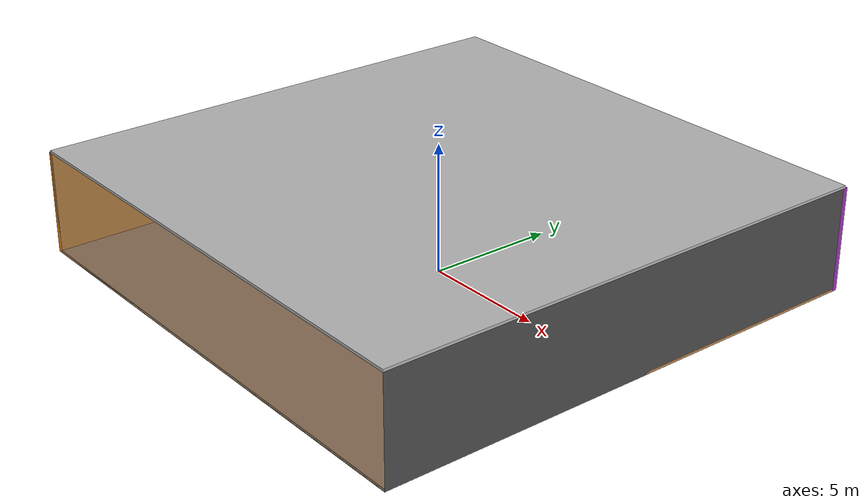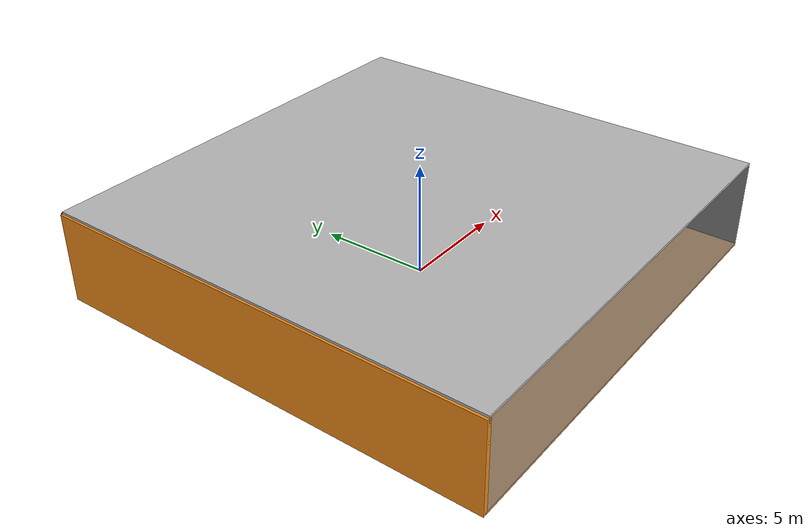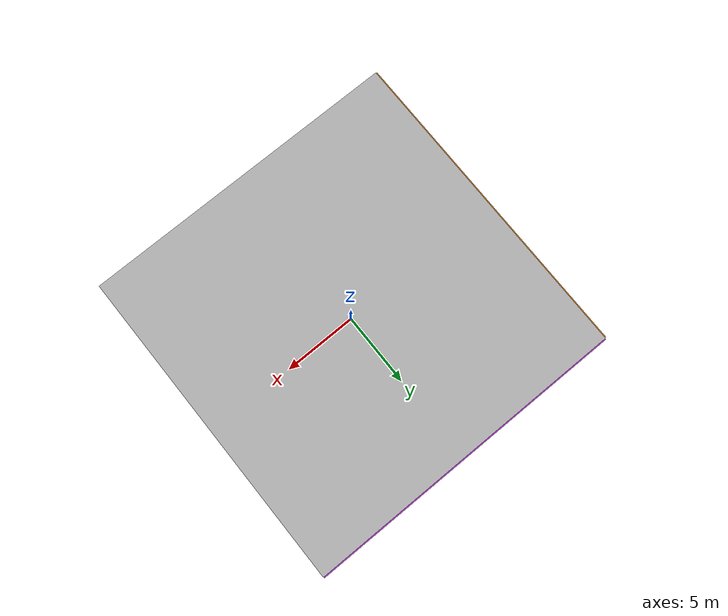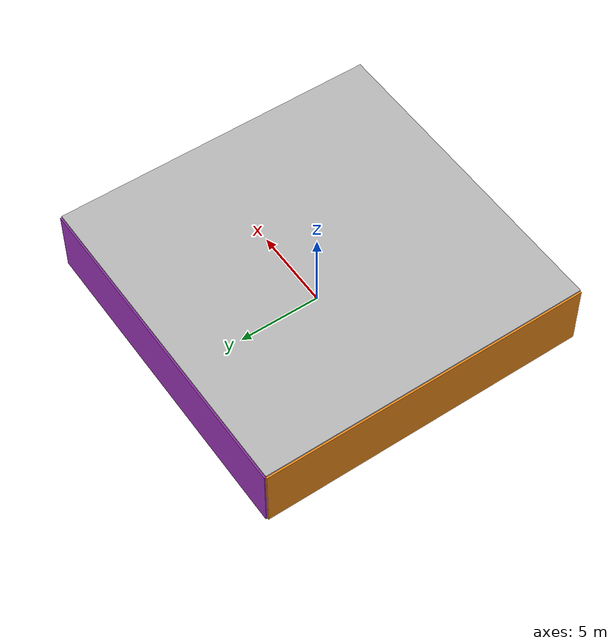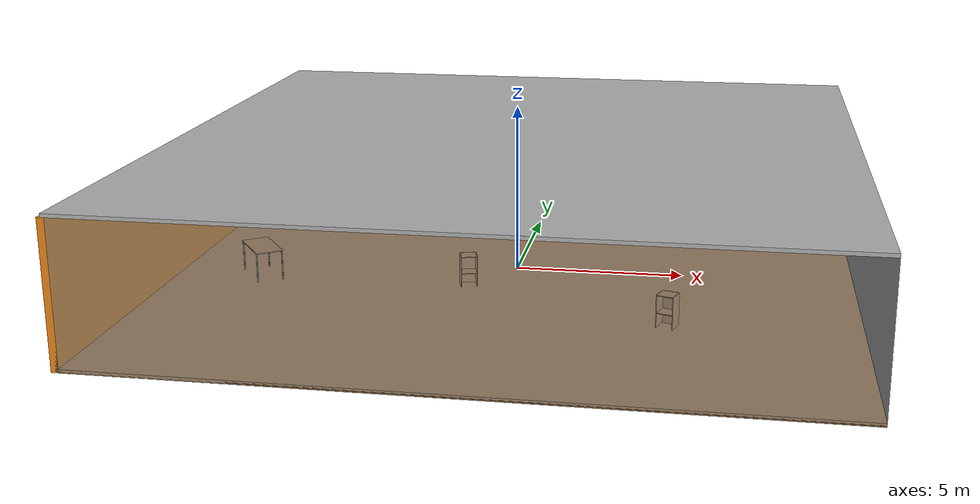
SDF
<sdf version="1.4">
 <world name="default">
  <physics type="ode">
   <max_step_size>0.001</max_step_size>
   <real_time_factor>1</real_time_factor>
   <real_time_update_rate>1000</real_time_update_rate>
   <gravity>0 0 -9.8</gravity>
  </physics>
  <scene><ambient>0.4 0.4 0.4 1</ambient><background>0.7 0.7 0.7 1</background><shadows>1</shadows></scene>
  <model name="Surrounding">
   <static>1</static>
   <link name="Ceiling">
    <collision name="Ceiling_Collision"><geometry><box><size>20 20 0.1</size></box></geometry></collision>
    <visual name="Ceiling_Visual">
     <geometry><box><size>20 20 0.1</size></box></geometry>
     <material>
      <script><uri>file://media/materials/scripts/gazebo.material</uri><name>Gazebo/Pioneer2Body</name></script>
     </material>
    </visual>
    <pose>0 0 4.05 0 0 0</pose>
   </link>
   <link name="Wall_South">
    <collision name="Wall_South_Collision">
     <geometry><box><size>20 0 4</size></box></geometry>
     <pose>0 0 2 0 -0 0</pose>
    </collision>
    <visual name="Wall_South_Visual">
     <pose>0 0 2 0 -0 0</pose>
     <geometry><box><size>20 0 4</size></box></geometry>
     <material>
      <script><uri>file://media/materials/scripts/gazebo.material</uri><name>Gazebo/GreyTransparent</name></script>
     </material>
    </visual>
    <velocity_decay><linear>0</linear><angular>0</angular></velocity_decay>
    <pose>0 -10 0 0 -0 0</pose>
   </link>
   <link name="Wall_East">
    <collision name="Wall_21_Collision">
     <geometry><box><size>20 0 4</size></box></geometry>
     <pose>0 0 2 0 -0 0</pose>
    </collision>
    <visual name="Wall_21_Visual">
     <pose>0 0 2 0 -0 0</pose>
     <geometry><box><size>20 0 4</size></box></geometry>
     <material>
      <script><uri>file://media/materials/scripts/gazebo.material</uri><name>Gazebo/DarkGrey</name></script>
     </material>
    </visual>
    <velocity_decay><linear>0</linear><angular>0</angular></velocity_decay>
    <pose>10 0 0 0 -0 1.5708</pose>
   </link>
   <link name="Wall_North">
    <collision name="Wall_22_Collision">
     <geometry><box><size>20 0.2 4</size></box></geometry>
     <pose>0 0 2 0 -0 0</pose>
    </collision>
    <visual name="Wall_22_Visual">
     <pose>0 0 2 0 -0 0</pose>
     <geometry><box><size>20 0.2 4</size></box></geometry>
     <material>
      <script><uri>file://media/materials/scripts/gazebo.material</uri><name>Gazebo/Purple</name></script>
     </material>
    </visual>
    <velocity_decay><linear>0</linear><angular>0</angular></velocity_decay>
    <pose>0 10 0 0 -0 0</pose>
   </link>
   <link name="Wall_West">
    <collision name="Wall_23_Collision">
     <geometry><box><size>20 0.2 4</size></box></geometry>
     <pose>0 0 2 0 -0 0</pose>
    </collision>
    <visual name="Wall_23_Visual">
     <pose>0 0 2 0 -0 0</pose>
     <geometry><box><size>20 0.2 4</size></box></geometry>
     <material>
      <script><uri>file://media/materials/scripts/gazebo.material</uri><name>Gazebo/Orange</name></script>
     </material>
    </visual>
    <velocity_decay><linear>0</linear><angular>0</angular></velocity_decay>
    <pose>-10 0 0 0 0 -1.5708</pose>
   </link>
   <link name="Ground_link">
    <collision name="collision">
     <pose>0 0 .05 0 -0 0</pose>
     <geometry><box><size>20 20 0.1</size></box></geometry>
    </collision>
    <visual name="visual">
     <pose>0 0 .05 0 -0 0</pose>
     <geometry><box><size>20 20 0.1</size></box></geometry>
     <material>
      <script><uri>file://media/materials/scripts/gazebo.material</uri><name>Gazebo/Wood</name></script>
     </material>
    </visual>
   </link>
   <static>1</static>
  </model>
  <spherical_coordinates>
   <surface_model>EARTH_WGS84</surface_model>
   <latitude_deg>0</latitude_deg>
   <longitude_deg>0</longitude_deg>
   <elevation>0</elevation>
   <heading_deg>0</heading_deg>
  </spherical_coordinates>
  <light name="lightball_0" type="diffuse">
   <diffuse>0.8 0.8 0.8 1</diffuse>
   <specular>0.2 0.2 0.2 1</specular>
   <attenuation>
    <range>100</range>
    <constant>0.7</constant>
    <linear>0.01</linear>
    <quadratic>0.001</quadratic>
   </attenuation>
   <direction>-0.5 0.1 -0.9</direction>
   <pose>4.17814240871 -9.77079771499 2.32330322975 0 0 0</pose>
  </light>
  <light name="lightball_1" type="diffuse">
   <diffuse>0.8 0.8 0.8 1</diffuse>
   <specular>0.2 0.2 0.2 1</specular>
   <attenuation>
    <range>100</range>
    <constant>0.7</constant>
    <linear>0.01</linear>
    <quadratic>0.001</quadratic>
   </attenuation>
   <direction>-0.5 0.1 -0.9</direction>
   <pose>3.10912003635 8.71816250619 3.29169407866 0 0 0</pose>
  </light>
  <light name="lightball_2" type="diffuse">
   <diffuse>0.8 0.8 0.8 1</diffuse>
   <specular>0.2 0.2 0.2 1</specular>
   <attenuation>
    <range>100</range>
    <constant>0.7</constant>
    <linear>0.01</linear>
    <quadratic>0.001</quadratic>
   </attenuation>
   <direction>-0.5 0.1 -0.9</direction>
   <pose>-1.54701606974 -7.62882666107 1.59252387813 0 0 0</pose>
  </light>
  <light name="lightball_3" type="diffuse">
   <diffuse>0.8 0.8 0.8 1</diffuse>
   <specular>0.2 0.2 0.2 1</specular>
   <attenuation>
    <range>100</range>
    <constant>0.7</constant>
    <linear>0.01</linear>
    <quadratic>0.001</quadratic>
   </attenuation>
   <direction>-0.5 0.1 -0.9</direction>
   <pose>7.63303559609 -6.80282486719 3.76226801062 0 0 0</pose>
  </light>
  <include><uri>model://table</uri><pose>-7.36224014646 -2.12864838541 0 0 0 2.19998525949</pose></include>
  <include><uri>model://cabinet</uri><pose>-3.4530711605 7.67230266688 0 0 0 0.282696874519</pose></include>
  <include><uri>model://cabinet</uri><pose>-1.12052859661 -2.08801297796 0 0 0 1.86276412677</pose></include>
  <include><uri>model://cabinet</uri><pose>4.78656134674 -4.62775998518 0 0 0 1.2326373951</pose></include>
  <include>
   <uri>model://construction_cone</uri>
   <pose>8.59850509578 8.33027568544 0 0 0 0.951518960777</pose>
  </include>
 </world>
</sdf>

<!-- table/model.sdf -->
<sdf version="1.5">
  <model name="table">
    <static>true</static>
    <link name="link">
      <collision name="surface">
        <pose>0 0 1.0 0 0 0</pose>
        <geometry>
          <box>
            <size>1.5 0.8 0.03</size>
          </box>
        </geometry>
        <surface>
          <friction>
            <ode>
              <mu>0.6</mu>
              <mu2>0.6</mu2>
            </ode>
          </friction>
        </surface>
      </collision>
      <visual name="visual1">
        <pose>0 0 1.0 0 0 0</pose>
        <geometry>
          <box>
            <size>1.5 0.8 0.03</size>
          </box>
        </geometry>
        <material>
          <script>
            <uri>model://media/materials/scripts/gazebo.material</uri>
            <name>Gazebo/Wood</name>
          </script>
        </material>
      </visual>
      <collision name="front_left_leg">
        <pose>0.68 0.38 0.5 0 0 0</pose>
        <geometry>
          <cylinder>
            <radius>0.02</radius>
            <length>1.0</length>
          </cylinder>
        </geometry>
      </collision>
      <visual name="front_left_leg">
        <pose>0.68 0.38 0.5 0 0 0</pose>
        <geometry>
          <cylinder>
            <radius>0.02</radius>
            <length>1.0</length>
          </cylinder>
        </geometry>
        <material>
          <script>
            <uri>model://media/materials/scripts/gazebo.material</uri>
            <name>Gazebo/Grey</name>
          </script>
        </material>
      </visual>
      <collision name="front_right_leg">
        <pose>0.68 -0.38 0.5 0 0 0</pose>
        <geometry>
          <cylinder>
            <radius>0.02</radius>
            <length>1.0</length>
          </cylinder>
        </geometry>
      </collision>
      <visual name="front_right_leg">
        <pose>0.68 -0.38 0.5 0 0 0</pose>
        <geometry>
          <cylinder>
            <radius>0.02</radius>
            <length>1.0</length>
          </cylinder>
        </geometry>
        <material>
          <script>
            <uri>model://media/materials/scripts/gazebo.material</uri>
            <name>Gazebo/Grey</name>
          </script>
        </material>
      </visual>
      <collision name="back_right_leg">
        <pose>-0.68 -0.38 0.5 0 0 0</pose>
        <geometry>
          <cylinder>
            <radius>0.02</radius>
            <length>1.0</length>
          </cylinder>
        </geometry>
      </collision>
      <visual name="back_right_leg">
        <pose>-0.68 -0.38 0.5 0 0 0</pose>
        <geometry>
          <cylinder>
            <radius>0.02</radius>
            <length>1.0</length>
          </cylinder>
        </geometry>
        <material>
          <script>
            <uri>model://media/materials/scripts/gazebo.material</uri>
            <name>Gazebo/Grey</name>
          </script>
        </material>
      </visual>
      <collision name="back_left_leg">
        <pose>-0.68 0.38 0.5 0 0 0</pose>
        <geometry>
          <cylinder>
            <radius>0.02</radius>
            <length>1.0</length>
          </cylinder>
        </geometry>
      </collision>
      <visual name="back_left_leg">
        <pose>-0.68 0.38 0.5 0 0 0</pose>
        <geometry>
          <cylinder>
            <radius>0.02</radius>
            <length>1.0</length>
          </cylinder>
        </geometry>
        <material>
          <script>
            <uri>model://media/materials/scripts/gazebo.material</uri>
            <name>Gazebo/Grey</name>
          </script>
        </material>
      </visual>
    </link>
  </model>
</sdf>

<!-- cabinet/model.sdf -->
<sdf version="1.5">
  <model name="cabinet">
    <static>true</static>
    <link name="cabinet_bottom_plate">
      <inertial>
        <pose>0 0 -1 0 0 0</pose>
        <inertia>
          <ixx>2.050000</ixx>
          <ixy>0</ixy>
          <ixz>0</ixz>
          <iyy>2.050000</iyy>
          <iyz>0</iyz>
          <izz>2.050000</izz>
        </inertia>
        <mass>25.000000</mass>
      </inertial>
      <collision name="cabinet_bottom_plate_geom">
        <pose>0 0 0.010000 0 0 0</pose>
        <geometry>
          <box>
            <size>0.450000 0.450000 0.020000</size>
          </box>
        </geometry>
      </collision>
      <visual name="cabinet_bottom_plate_geom_visual">
        <pose>0 0 0.010000 0 0 0</pose>
        <geometry>
          <box>
            <size>0.450000 0.450000 0.020000</size>
          </box>
        </geometry>
        <material>
          <script>
            <uri>model://media/materials/scripts/gazebo.material</uri>
            <name>Gazebo/Wood</name>
          </script>
        </material>
      </visual>
      <collision name="cabinet_bottom_plate_geom_cabinet_back_plate">
        <pose>0.235000 0 0.510000 0 0 0</pose>
        <geometry>
          <box>
            <size>0.020000 0.450000 1.020000</size>
          </box>
        </geometry>
      </collision>
      <visual name="cabinet_bottom_plate_geom_cabinet_back_plate_visual">
        <pose>0.235000 0 0.510000 0 0 0</pose>
        <geometry>
          <box>
            <size>0.020000 0.450000 1.020000</size>
          </box>
        </geometry>
        <material>
          <script>
            <uri>model://media/materials/scripts/gazebo.material</uri>
            <name>Gazebo/Wood</name>
          </script>
        </material>
      </visual>
      <collision name="cabinet_bottom_plate_geom_cabinet_left_plate">
        <pose>0 0.235000 0.510000 0 0 0</pose>
        <geometry>
          <box>
            <size>0.450000 0.020000 1.020000</size>
          </box>
        </geometry>
      </collision>
      <visual name="cabinet_bottom_plate_geom_cabinet_left_plate_visual">
        <pose>0 0.235000 0.510000 0 0 0</pose>
        <geometry>
          <box>
            <size>0.450000 0.020000 1.020000</size>
          </box>
        </geometry>
        <material>
          <script>
            <uri>model://media/materials/scripts/gazebo.material</uri>
            <name>Gazebo/Wood</name>
          </script>
        </material>
      </visual>
      <collision name="cabinet_bottom_plate_geom_cabinet_middle_plate">
        <pose>0 0 0.510000 0 0 0</pose>
        <geometry>
          <box>
            <size>0.450000 0.450000 0.020000</size>
          </box>
        </geometry>
      </collision>
      <visual name="cabinet_bottom_plate_geom_cabinet_middle_plate_visual">
        <pose>0 0 0.510000 0 0 0</pose>
        <geometry>
          <box>
            <size>0.450000 0.450000 0.020000</size>
          </box>
        </geometry>
        <material>
          <script>
            <uri>model://media/materials/scripts/gazebo.material</uri>
            <name>Gazebo/Wood</name>
          </script>
        </material>
      </visual>
      <collision name="cabinet_bottom_plate_geom_cabinet_right_plate">
        <pose>0 -0.235000 0.510000 0 0 0</pose>
        <geometry>
          <box>
            <size>0.450000 0.020000 1.020000</size>
          </box>
        </geometry>
      </collision>
      <visual name="cabinet_bottom_plate_geom_cabinet_right_plate_visual">
        <pose>0 -0.235000 0.510000 0 0 0</pose>
        <geometry>
          <box>
            <size>0.450000 0.020000 1.020000</size>
          </box>
        </geometry>
        <material>
          <script>
            <uri>model://media/materials/scripts/gazebo.material</uri>
            <name>Gazebo/Wood</name>
          </script>
        </material>
      </visual>
      <collision name="cabinet_bottom_plate_geom_cabinet_top_plate">
        <pose>0 0 1.010000 0 0 0</pose>
        <geometry>
          <box>
            <size>0.450000 0.450000 0.020000</size>
          </box>
        </geometry>
      </collision>
      <visual name="cabinet_bottom_plate_geom_cabinet_top_plate_visual">
        <pose>0 0 1.010000 0 0 0</pose>
        <geometry>
          <box>
            <size>0.450000 0.450000 0.020000</size>
          </box>
        </geometry>
        <material>
          <script>
            <uri>model://media/materials/scripts/gazebo.material</uri>
            <name>Gazebo/Wood</name>
          </script>
        </material>
      </visual>
    </link>
  </model>
</sdf>

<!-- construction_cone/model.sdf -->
<sdf version="1.5">
  <model name="Construction Cone">
    <link name="link">
      <collision name="collision">
        <geometry>
          <mesh>
            <scale>10 10 10</scale>
            <uri>file://isr-testbed/construction_cone/meshes/construction_cone.dae</uri>
          </mesh>
        </geometry>
      </collision>
      <visual name="visual">
        <geometry>
          <mesh>
            <scale>10 10 10</scale>
            <uri>file://isr-testbed/construction_cone/meshes/construction_cone.dae</uri>
          </mesh>
        </geometry>
      </visual>
    </link>
  </model>
</sdf>
